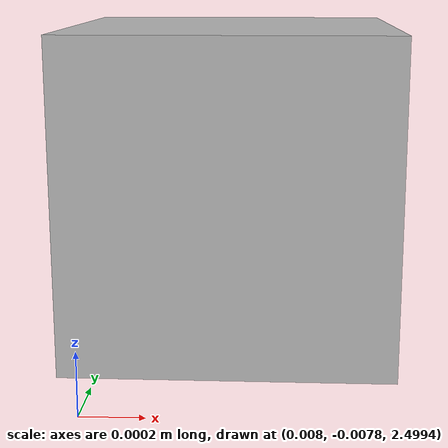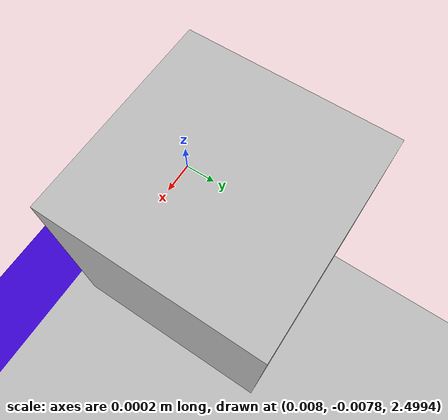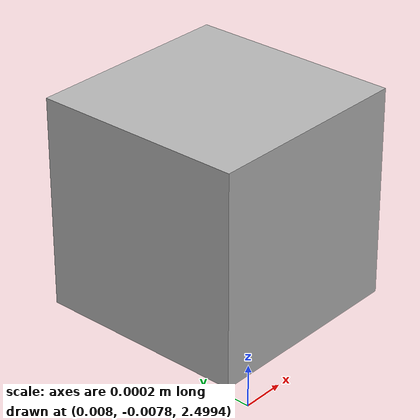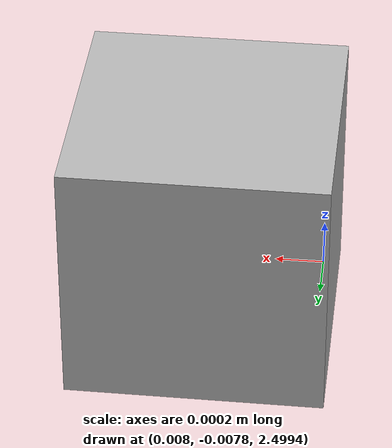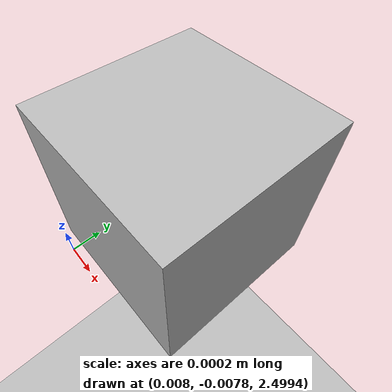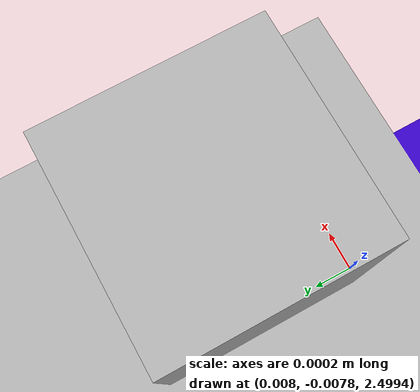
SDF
<sdf version="1.7">
 <world name="default">
  <scene>
   <shadows>0</shadows>
   <grid>0</grid>
   <origin_visual>0</origin_visual>
   <sky><clouds><speed>4</speed></clouds></sky>
   <ambient>0.4 0.4 0.4 1</ambient>
   <background>0.7 0.7 0.7 1</background>
  </scene>
  <light name="sun" type="directional">
   <pose>0 0 10 0 -0 0</pose>
   <diffuse>0.8 0.8 0.8 1</diffuse>
   <specular>0.2 0.2 0.2 1</specular>
   <attenuation>
    <range>1000</range>
    <constant>0.9</constant>
    <linear>0.01</linear>
    <quadratic>0.001</quadratic>
   </attenuation>
   <direction>-0.5 0.1 -0.9</direction>
   <spot><inner_angle>0</inner_angle><outer_angle>0</outer_angle><falloff>0</falloff></spot>
  </light>
  <model name="Flipkart_round2_Arena">
   <link name="link">
    <inertial><mass>15</mass></inertial>
    <collision name="collision">
     <pose>0 0 0 0 0 -1.57</pose>
     <geometry><mesh><uri>model://flipkart_round_2_arena/dae/arena.dae</uri></mesh></geometry>
    </collision>
    <visual name="visual">
     <pose>0 0 0 0 0 -1.57</pose>
     <geometry><mesh><uri>model://flipkart_round_2_arena/dae/arena.dae</uri></mesh></geometry>
    </visual>
   </link>
   <static>1</static>
  </model>
  <physics type="ode">
   <max_step_size>0.001</max_step_size>
   <real_time_factor>1</real_time_factor>
   <real_time_update_rate>1000</real_time_update_rate>
   <gravity>0 0 -9.8</gravity>
  </physics>
  <gravity>0 0 -9.8</gravity>
  <magnetic_field>6e-06 2.3e-05 -4.2e-05</magnetic_field>
  <atmosphere type="adiabatic"/>
  <spherical_coordinates>
   <surface_model>EARTH_WGS84</surface_model>
   <latitude_deg>0</latitude_deg>
   <longitude_deg>0</longitude_deg>
   <elevation>0</elevation>
   <heading_deg>0</heading_deg>
  </spherical_coordinates>
  <model name="cam_bot">
   <joint name="world_base" type="fixed">
    <pose relative_to="__model__">0 0 2.5 -3.14159 1.57059 0.000507</pose>
    <parent>world</parent>
    <child>camera_link</child>
   </joint>
   <link name="camera_link">
    <pose relative_to="world_base">0 0 0 0 -0 0</pose>
    <inertial>
     <mass>1.58499</mass>
     <inertia>
      <ixx>0.01042</ixx>
      <ixy>0.001177</ixy>
      <ixz>-0.0008871</ixz>
      <iyy>0.01045</iyy>
      <iyz>0.0002226</iyz>
      <izz>0.01817</izz>
     </inertia>
    </inertial>
    <collision name="camera_link_collision">
     <geometry><box><size>0.001 0.001 0.001</size></box></geometry>
    </collision>
    <visual name="camera_link_visual"><geometry><box><size>0.001 0.001 0.001</size></box></geometry></visual>
    <sensor name="camera" type="camera">
     <update_rate>30</update_rate>
     <camera name="head">
      <horizontal_fov>1.39626</horizontal_fov>
      <image><width>1280</width><height>720</height><format>R8G8B8</format></image>
      <clip><near>0.02</near><far>300</far></clip>
      <noise><type>gaussian</type><mean>0</mean><stddev>0.007</stddev></noise>
     </camera>
     <plugin name="camera_controller" filename="libgazebo_ros_camera.so">
      <alwaysOn>1</alwaysOn>
      <updateRate>0.0</updateRate>
      <cameraName>usb_cam</cameraName>
      <imageTopicName>image_raw</imageTopicName>
      <cameraInfoTopicName>/camera/camera_info</cameraInfoTopicName>
      <frameName>camera_link</frameName>
      <hackBaseline>0.07</hackBaseline>
      <distortionK1>0.0</distortionK1>
      <distortionK2>0.0</distortionK2>
      <distortionK3>0.0</distortionK3>
      <distortionT1>0.0</distortionT1>
      <distortionT2>0.0</distortionT2>
     </plugin>
    </sensor>
   </link>
   <pose>0.008429 -0.007252 0 0 -0 0</pose>
  </model>
 </world>
</sdf>
